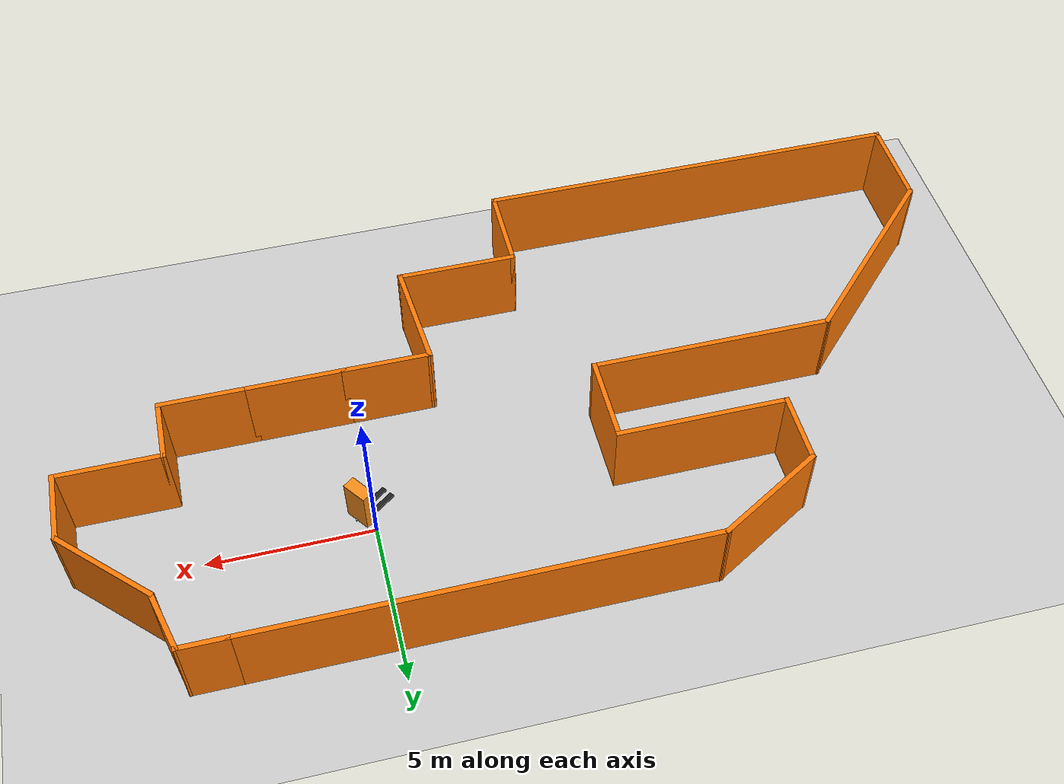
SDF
<sdf version="1.7">
 <world name="default">
  <light name="sun" type="directional">
   <pose>0 0 10 0 -0 0</pose>
   <diffuse>0.8 0.8 0.8 1</diffuse>
   <specular>0.2 0.2 0.2 1</specular>
   <attenuation>
    <range>1000</range>
    <constant>0.9</constant>
    <linear>0.01</linear>
    <quadratic>0.001</quadratic>
   </attenuation>
   <direction>-0.5 0.1 -0.9</direction>
   <spot><inner_angle>0</inner_angle><outer_angle>0</outer_angle><falloff>0</falloff></spot>
  </light>
  <model name="ground_plane">
   <static>1</static>
   <link name="link">
    <collision name="collision">
     <geometry><plane><normal>0 0 1</normal><size>100 100</size></plane></geometry>
     <surface>
      <contact><collide_bitmask>65535</collide_bitmask></contact>
      <friction><ode><mu>100</mu><mu2>50</mu2></ode></friction>
     </surface>
    </collision>
    <visual name="visual">
     <cast_shadows>0</cast_shadows>
     <geometry><plane><normal>0 0 1</normal><size>100 100</size></plane></geometry>
     <material>
      <script><uri>file://media/materials/scripts/gazebo.material</uri><name>Gazebo/Grey</name></script>
     </material>
    </visual>
   </link>
  </model>
  <gravity>0 0 -9.8</gravity>
  <magnetic_field>6e-06 2.3e-05 -4.2e-05</magnetic_field>
  <atmosphere type="adiabatic"/>
  <physics type="ode">
   <max_step_size>0.001</max_step_size>
   <real_time_factor>1</real_time_factor>
   <real_time_update_rate>1000</real_time_update_rate>
  </physics>
  <scene><ambient>0.4 0.4 0.4 1</ambient><background>0.7 0.7 0.7 1</background><shadows>1</shadows></scene>
  <audio><device>default</device></audio>
  <spherical_coordinates>
   <surface_model>EARTH_WGS84</surface_model>
   <latitude_deg>0</latitude_deg>
   <longitude_deg>0</longitude_deg>
   <elevation>0</elevation>
   <heading_deg>0</heading_deg>
  </spherical_coordinates>
  <model name="stacker">
   <link name="base_link">
    <inertial>
     <pose>-0.15 -0.000119 0.545385 0 -0 0</pose>
     <mass>260</mass>
     <inertia>
      <ixx>65.5208</ixx>
      <ixy>-0.157227</ixy>
      <ixz>-20.0967</ixz>
      <iyy>79.6196</iyy>
      <iyz>-4.194</iyz>
      <izz>34.2687</izz>
     </inertia>
    </inertial>
    <collision name="base_link_fixed_joint_lump__chassis_collision">
     <pose>0 0 0.7 0 0 -1.57</pose>
     <geometry><box><size>0.8 0.4 1.4</size></box></geometry>
    </collision>
    <collision name="base_link_fixed_joint_lump__laser_link_collision_1">
     <pose>0.225 0.000179 0.05 0 -0 0</pose>
     <geometry><box><size>0.05 0.05 0.05</size></box></geometry>
    </collision>
    <collision name="base_link_fixed_joint_lump__left_fork_collision_2">
     <pose>-0.650124 0.15594 0.03 0 0 -1.57</pose>
     <geometry><box><size>0.16 0.9 0.06</size></box></geometry>
    </collision>
    <collision name="base_link_fixed_joint_lump__right_fork_collision_3">
     <pose>-0.649875 -0.156976 0.03 0 0 -1.57</pose>
     <geometry><box><size>0.16 0.9 0.06</size></box></geometry>
    </collision>
    <visual name="base_link_fixed_joint_lump__chassis_visual">
     <pose>0 0 0.7 0 0 -1.57</pose>
     <geometry><box><size>0.8 0.4 1.4</size></box></geometry>
     <material>
      <script><name>Gazebo/Orange</name><uri>file://media/materials/scripts/gazebo.material</uri></script>
     </material>
    </visual>
    <visual name="base_link_fixed_joint_lump__laser_link_visual_1">
     <pose>0.225 0.000179 0.05 0 -0 0</pose>
     <geometry><box><size>0.05 0.05 0.05</size></box></geometry>
    </visual>
    <visual name="base_link_fixed_joint_lump__left_fork_visual_2">
     <pose>-0.650124 0.15594 0.03 0 0 -1.57</pose>
     <geometry><box><size>0.16 0.9 0.06</size></box></geometry>
     <material>
      <script><name>Gazebo/Black</name><uri>file://media/materials/scripts/gazebo.material</uri></script>
     </material>
    </visual>
    <visual name="base_link_fixed_joint_lump__right_fork_visual_3">
     <pose>-0.649875 -0.156976 0.03 0 0 -1.57</pose>
     <geometry><box><size>0.16 0.9 0.06</size></box></geometry>
     <material>
      <script><name>Gazebo/Black</name><uri>file://media/materials/scripts/gazebo.material</uri></script>
     </material>
    </visual>
    <sensor name="laser_scanner" type="ray">
     <always_on>1</always_on>
     <visualize>1</visualize>
     <update_rate>3</update_rate>
     <ray>
      <scan>
       <horizontal>
        <samples>360</samples>
        <resolution>1</resolution>
        <min_angle>-1.57</min_angle>
        <max_angle>1.57</max_angle>
       </horizontal>
       <vertical><samples>1</samples><min_angle>0</min_angle><max_angle>0</max_angle></vertical>
      </scan>
      <range><min>0.3</min><max>25</max><resolution>0.1</resolution></range>
     </ray>
     <plugin name="scan" filename="libgazebo_ros_ray_sensor.so">
      <ros><remapping>~/out:=scan</remapping></ros>
      <output_type>sensor_msgs/LaserScan</output_type>
      <frame_name>laser_link</frame_name>
     </plugin>
     <pose>0.225 0.000179 0.05 0 -0 0</pose>
    </sensor>
   </link>
   <joint name="fork_wheel_l_joint" type="revolute">
    <pose relative_to="base_link">-0.870124 0.155765 0.0075 -1.57 0 -3.14</pose>
    <parent>base_link</parent>
    <child>fox_wheel_L</child>
    <axis>
     <xyz>0 0 -1</xyz>
     <limit><lower>-1e+16</lower><upper>1e+16</upper></limit>
     <dynamics><spring_reference>0</spring_reference><spring_stiffness>0</spring_stiffness></dynamics>
    </axis>
   </joint>
   <link name="fox_wheel_L">
    <pose relative_to="fork_wheel_l_joint">0 0 0 0 -0 0</pose>
    <inertial>
     <mass>1</mass>
     <inertia>
      <ixx>0.000689583</ixx>
      <ixy>0</ixy>
      <ixz>0</ixz>
      <iyy>0.000689583</iyy>
      <iyz>0</iyz>
      <izz>0.0003125</izz>
     </inertia>
    </inertial>
    <collision name="fox_wheel_L_collision">
     <geometry><cylinder><length>0.08</length><radius>0.025</radius></cylinder></geometry>
     <surface><friction><ode><mu>1500</mu><mu2>1500</mu2></ode></friction></surface>
    </collision>
    <visual name="fox_wheel_L_visual">
     <geometry><cylinder><length>0.08</length><radius>0.025</radius></cylinder></geometry>
     <material>
      <script><name>Gazebo/Grey</name><uri>file://media/materials/scripts/gazebo.material</uri></script>
     </material>
    </visual>
   </link>
   <joint name="fork_wheel_r_joint" type="revolute">
    <pose relative_to="base_link">-0.869875 -0.157151 0.0075 -1.57 0 -3.14</pose>
    <parent>base_link</parent>
    <child>fox_wheel_R</child>
    <axis>
     <xyz>0 0 -1</xyz>
     <limit><lower>-1e+16</lower><upper>1e+16</upper></limit>
     <dynamics><spring_reference>0</spring_reference><spring_stiffness>0</spring_stiffness></dynamics>
    </axis>
   </joint>
   <link name="fox_wheel_R">
    <pose relative_to="fork_wheel_r_joint">0 0 0 0 -0 0</pose>
    <inertial>
     <mass>1</mass>
     <inertia>
      <ixx>0.000689583</ixx>
      <ixy>0</ixy>
      <ixz>0</ixz>
      <iyy>0.000689583</iyy>
      <iyz>0</iyz>
      <izz>0.0003125</izz>
     </inertia>
    </inertial>
    <collision name="fox_wheel_R_collision">
     <geometry><cylinder><length>0.08</length><radius>0.025</radius></cylinder></geometry>
     <surface><friction><ode><mu>1500</mu><mu2>1500</mu2></ode></friction></surface>
    </collision>
    <visual name="fox_wheel_R_visual">
     <geometry><cylinder><length>0.08</length><radius>0.025</radius></cylinder></geometry>
     <material>
      <script><name>Gazebo/Grey</name><uri>file://media/materials/scripts/gazebo.material</uri></script>
     </material>
    </visual>
   </link>
   <joint name="steering_joint" type="revolute">
    <pose relative_to="base_link">0 0 0.09 0 0 -1.57</pose>
    <parent>base_link</parent>
    <child>steering_joint_1</child>
    <axis>
     <xyz>0 0 1</xyz>
     <limit><lower>-1.57</lower><upper>1.57</upper><effort>10</effort><velocity>1</velocity></limit>
     <dynamics>
      <damping>10</damping>
      <friction>0</friction>
      <spring_reference>0</spring_reference>
      <spring_stiffness>0</spring_stiffness>
     </dynamics>
    </axis>
   </joint>
   <link name="steering_joint_1">
    <pose relative_to="steering_joint">0 0 0 0 -0 0</pose>
    <inertial>
     <mass>0.005</mass>
     <inertia><ixx>0.1</ixx><ixy>0</ixy><ixz>0</ixz><iyy>0.1</iyy><iyz>0</iyz><izz>0.1</izz></inertia>
    </inertial>
    <visual name="steering_joint_1_visual"><geometry><box><size>0.01 0.01 0.01</size></box></geometry></visual>
   </link>
   <joint name="traction_joint" type="revolute">
    <pose relative_to="steering_joint_1">0 0 0 -1.57 -0 -1.57</pose>
    <parent>steering_joint_1</parent>
    <child>wheel_1</child>
    <axis>
     <xyz>0 0 -1</xyz>
     <limit><effort>50</effort><velocity>0.5</velocity><lower>-1e+16</lower><upper>1e+16</upper></limit>
     <dynamics>
      <damping>2</damping>
      <friction>1</friction>
      <spring_reference>0</spring_reference>
      <spring_stiffness>0</spring_stiffness>
     </dynamics>
    </axis>
   </joint>
   <link name="wheel_1">
    <pose relative_to="traction_joint">0 0 0 0 -0 0</pose>
    <inertial>
     <mass>30</mass>
     <inertia>
      <ixx>0.199187</ixx>
      <ixy>0</ixy>
      <ixz>0</ixz>
      <iyy>0.199187</iyy>
      <iyz>0</iyz>
      <izz>0.198375</izz>
     </inertia>
    </inertial>
    <collision name="wheel_1_collision">
     <geometry><cylinder><length>0.2</length><radius>0.115</radius></cylinder></geometry>
     <surface><friction><ode><mu>1500</mu><mu2>1500</mu2></ode></friction></surface>
    </collision>
    <visual name="wheel_1_visual">
     <geometry><cylinder><length>0.2</length><radius>0.115</radius></cylinder></geometry>
     <material>
      <script><name>Gazebo/Grey</name><uri>file://media/materials/scripts/gazebo.material</uri></script>
     </material>
    </visual>
   </link>
   <static>0</static>
   <plugin name="gazebo_ros2_control" filename="libgazebo_ros2_control.so">
    <parameters>/home/humble/ros_control_ws/install/stacker_description/share/stacker_description/config/stacker_drive_controller.yaml</parameters>
   </plugin>
   <pose>0.312665 -0.582398 0.013522 7.2e-05 0.004569 0.627759</pose>
  </model>
  <model name="myworld">
   <pose>-5.31261 -3.02896 0 0 -0 0</pose>
   <link name="Wall_0">
    <collision name="Wall_0_Collision">
     <geometry><box><size>2.75 0.15 2.5</size></box></geometry>
     <pose>0 0 1.25 0 -0 0</pose>
    </collision>
    <visual name="Wall_0_Visual">
     <pose>0 0 1.25 0 -0 0</pose>
     <geometry><box><size>2.75 0.15 2.5</size></box></geometry>
     <material>
      <script><uri>file://media/materials/scripts/gazebo.material</uri><name>Gazebo/Grey</name></script>
      <ambient>0.996078 0.47451 0.0196078 1</ambient>
     </material>
     <meta><layer>0</layer></meta>
    </visual>
    <pose>4.06611 -1.11104 0 0 -0 0</pose>
   </link>
   <link name="Wall_1">
    <collision name="Wall_1_Collision">
     <geometry><box><size>3 0.15 2.5</size></box></geometry>
     <pose>0 0 1.25 0 -0 0</pose>
    </collision>
    <visual name="Wall_1_Visual">
     <pose>0 0 1.25 0 -0 0</pose>
     <geometry><box><size>3 0.15 2.5</size></box></geometry>
     <material>
      <script><uri>file://media/materials/scripts/gazebo.material</uri><name>Gazebo/Grey</name></script>
      <ambient>0.996078 0.47451 0.0196078 1</ambient>
     </material>
     <meta><layer>0</layer></meta>
    </visual>
    <pose>6.79111 -1.11104 0 0 -0 0</pose>
   </link>
   <link name="Wall_10">
    <collision name="Wall_10_Collision">
     <geometry><box><size>3.75 0.15 2.5</size></box></geometry>
     <pose>0 0 1.25 0 -0 0</pose>
    </collision>
    <visual name="Wall_10_Visual">
     <pose>0 0 1.25 0 -0 0</pose>
     <geometry><box><size>3.75 0.15 2.5</size></box></geometry>
     <material>
      <script><uri>file://media/materials/scripts/gazebo.material</uri><name>Gazebo/Grey</name></script>
      <ambient>0.996078 0.47451 0.0196078 1</ambient>
     </material>
     <meta><layer>0</layer></meta>
    </visual>
    <pose>-5.44036 6.09473 0 0 -0 -2.61799</pose>
   </link>
   <link name="Wall_11">
    <collision name="Wall_11_Collision">
     <geometry><box><size>2.25 0.15 2.5</size></box></geometry>
     <pose>0 0 1.25 0 -0 0</pose>
    </collision>
    <visual name="Wall_11_Visual">
     <pose>0 0 1.25 0 -0 0</pose>
     <geometry><box><size>2.25 0.15 2.5</size></box></geometry>
     <material>
      <script><uri>file://media/materials/scripts/gazebo.material</uri><name>Gazebo/Grey</name></script>
      <ambient>0.996078 0.47451 0.0196078 1</ambient>
     </material>
     <meta><layer>0</layer></meta>
    </visual>
    <pose>-6.9992 4.14473 0 0 -0 -1.5708</pose>
   </link>
   <link name="Wall_12">
    <collision name="Wall_12_Collision">
     <geometry><box><size>5.25 0.15 2.5</size></box></geometry>
     <pose>0 0 1.25 0 -0 0</pose>
    </collision>
    <visual name="Wall_12_Visual">
     <pose>0 0 1.25 0 -0 0</pose>
     <geometry><box><size>5.25 0.15 2.5</size></box></geometry>
     <material>
      <script><uri>file://media/materials/scripts/gazebo.material</uri><name>Gazebo/Grey</name></script>
      <ambient>0.996078 0.47451 0.0196078 1</ambient>
     </material>
     <meta><layer>0</layer></meta>
    </visual>
    <pose>-4.4492 3.09473 0 0 -0 0</pose>
   </link>
   <link name="Wall_13">
    <collision name="Wall_13_Collision">
     <geometry><box><size>2.75 0.15 2.5</size></box></geometry>
     <pose>0 0 1.25 0 -0 0</pose>
    </collision>
    <visual name="Wall_13_Visual">
     <pose>0 0 1.25 0 -0 0</pose>
     <geometry><box><size>2.75 0.15 2.5</size></box></geometry>
     <material>
      <script><uri>file://media/materials/scripts/gazebo.material</uri><name>Gazebo/Grey</name></script>
      <ambient>0.996078 0.47451 0.0196078 1</ambient>
     </material>
     <meta><layer>0</layer></meta>
    </visual>
    <pose>-1.8992 1.79473 0 0 -0 -1.5708</pose>
   </link>
   <link name="Wall_14">
    <collision name="Wall_14_Collision">
     <geometry><box><size>7.5 0.15 2.5</size></box></geometry>
     <pose>0 0 1.25 0 -0 0</pose>
    </collision>
    <visual name="Wall_14_Visual">
     <pose>0 0 1.25 0 -0 0</pose>
     <geometry><box><size>7.5 0.15 2.5</size></box></geometry>
     <material>
      <script><uri>file://media/materials/scripts/gazebo.material</uri><name>Gazebo/Grey</name></script>
      <ambient>0.996078 0.47451 0.0196078 1</ambient>
     </material>
     <meta><layer>0</layer></meta>
    </visual>
    <pose>-5.5742 0.494726 0 0 -0 3.14159</pose>
   </link>
   <link name="Wall_16">
    <collision name="Wall_16_Collision">
     <geometry><box><size>6.75 0.15 2.5</size></box></geometry>
     <pose>0 0 1.25 0 -0 0</pose>
    </collision>
    <visual name="Wall_16_Visual">
     <pose>0 0 1.25 0 -0 0</pose>
     <geometry><box><size>6.75 0.15 2.5</size></box></geometry>
     <material>
      <script><uri>file://media/materials/scripts/gazebo.material</uri><name>Gazebo/Grey</name></script>
      <ambient>0.996078 0.47451 0.0196078 1</ambient>
     </material>
     <meta><layer>0</layer></meta>
    </visual>
    <pose>-11.5827 -1.83873 0 0 -0 -2.35619</pose>
   </link>
   <link name="Wall_17">
    <collision name="Wall_17_Collision">
     <geometry><box><size>3 0.15 2.5</size></box></geometry>
     <pose>0 0 1.25 0 -0 0</pose>
    </collision>
    <visual name="Wall_17_Visual">
     <pose>0 0 1.25 0 -0 0</pose>
     <geometry><box><size>3 0.15 2.5</size></box></geometry>
     <material>
      <script><uri>file://media/materials/scripts/gazebo.material</uri><name>Gazebo/Grey</name></script>
      <ambient>0.996078 0.47451 0.0196078 1</ambient>
     </material>
     <meta><layer>0</layer></meta>
    </visual>
    <pose>-13.9161 -5.59718 0 0 -0 -1.5708</pose>
   </link>
   <link name="Wall_18">
    <collision name="Wall_18_Collision">
     <geometry><box><size>13.5 0.15 2.5</size></box></geometry>
     <pose>0 0 1.25 0 -0 0</pose>
    </collision>
    <visual name="Wall_18_Visual">
     <pose>0 0 1.25 0 -0 0</pose>
     <geometry><box><size>13.5 0.15 2.5</size></box></geometry>
     <material>
      <script><uri>file://media/materials/scripts/gazebo.material</uri><name>Gazebo/Grey</name></script>
      <ambient>0.996078 0.47451 0.0196078 1</ambient>
     </material>
     <meta><layer>0</layer></meta>
    </visual>
    <pose>-7.24111 -7.02218 0 0 -0 0</pose>
   </link>
   <link name="Wall_19">
    <collision name="Wall_19_Collision">
     <geometry><box><size>2.75 0.15 2.5</size></box></geometry>
     <pose>0 0 1.25 0 -0 0</pose>
    </collision>
    <visual name="Wall_19_Visual">
     <pose>0 0 1.25 0 -0 0</pose>
     <geometry><box><size>2.75 0.15 2.5</size></box></geometry>
     <material>
      <script><uri>file://media/materials/scripts/gazebo.material</uri><name>Gazebo/Grey</name></script>
      <ambient>0.996078 0.47451 0.0196078 1</ambient>
     </material>
     <meta><layer>0</layer></meta>
    </visual>
    <pose>-0.566109 -5.72218 0 0 -0 1.5708</pose>
   </link>
   <link name="Wall_2">
    <collision name="Wall_2_Collision">
     <geometry><box><size>2.75 0.15 2.5</size></box></geometry>
     <pose>0 0 1.25 0 -0 0</pose>
    </collision>
    <visual name="Wall_2_Visual">
     <pose>0 0 1.25 0 -0 0</pose>
     <geometry><box><size>2.75 0.15 2.5</size></box></geometry>
     <material>
      <script><uri>file://media/materials/scripts/gazebo.material</uri><name>Gazebo/Grey</name></script>
      <ambient>0.996078 0.47451 0.0196078 1</ambient>
     </material>
     <meta><layer>0</layer></meta>
    </visual>
    <pose>9.51611 -1.11104 0 0 -0 0</pose>
   </link>
   <link name="Wall_20">
    <collision name="Wall_20_Collision">
     <geometry><box><size>3.75 0.15 2.5</size></box></geometry>
     <pose>0 0 1.25 0 -0 0</pose>
    </collision>
    <visual name="Wall_20_Visual">
     <pose>0 0 1.25 0 -0 0</pose>
     <geometry><box><size>3.75 0.15 2.5</size></box></geometry>
     <material>
      <script><uri>file://media/materials/scripts/gazebo.material</uri><name>Gazebo/Grey</name></script>
      <ambient>0.996078 0.47451 0.0196078 1</ambient>
     </material>
     <meta><layer>0</layer></meta>
    </visual>
    <pose>1.23389 -4.42218 0 0 -0 0</pose>
   </link>
   <link name="Wall_21">
    <collision name="Wall_21_Collision">
     <geometry><box><size>3.47194 0.15 2.5</size></box></geometry>
     <pose>0 0 1.25 0 -0 0</pose>
    </collision>
    <visual name="Wall_21_Visual">
     <pose>0 0 1.25 0 -0 0</pose>
     <geometry><box><size>3.47194 0.15 2.5</size></box></geometry>
     <material>
      <script><uri>file://media/materials/scripts/gazebo.material</uri><name>Gazebo/Grey</name></script>
      <ambient>0.996078 0.47451 0.0196078 1</ambient>
     </material>
     <meta><layer>0</layer></meta>
    </visual>
    <pose>2.9 -2.76661 0 0 -0 1.65149</pose>
   </link>
   <link name="Wall_3">
    <collision name="Wall_3_Collision">
     <geometry><box><size>2 0.15 2.5</size></box></geometry>
     <pose>0 0 1.25 0 -0 0</pose>
    </collision>
    <visual name="Wall_3_Visual">
     <pose>0 0 1.25 0 -0 0</pose>
     <geometry><box><size>2 0.15 2.5</size></box></geometry>
     <material>
      <script><uri>file://media/materials/scripts/gazebo.material</uri><name>Gazebo/Grey</name></script>
      <ambient>0.996078 0.47451 0.0196078 1</ambient>
     </material>
     <meta><layer>0</layer></meta>
    </visual>
    <pose>10.8161 -0.186044 0 0 -0 1.5708</pose>
   </link>
   <link name="Wall_4">
    <collision name="Wall_4_Collision">
     <geometry><box><size>3.25 0.15 2.5</size></box></geometry>
     <pose>0 0 1.25 0 -0 0</pose>
    </collision>
    <visual name="Wall_4_Visual">
     <pose>0 0 1.25 0 -0 0</pose>
     <geometry><box><size>3.25 0.15 2.5</size></box></geometry>
     <material>
      <script><uri>file://media/materials/scripts/gazebo.material</uri><name>Gazebo/Grey</name></script>
      <ambient>0.996078 0.47451 0.0196078 1</ambient>
     </material>
     <meta><layer>0</layer></meta>
    </visual>
    <pose>12.3661 0.738956 0 0 -0 0</pose>
   </link>
   <link name="Wall_5">
    <collision name="Wall_5_Collision">
     <geometry><box><size>2.25 0.15 2.5</size></box></geometry>
     <pose>0 0 1.25 0 -0 0</pose>
    </collision>
    <visual name="Wall_5_Visual">
     <pose>0 0 1.25 0 -0 0</pose>
     <geometry><box><size>2.25 0.15 2.5</size></box></geometry>
     <material>
      <script><uri>file://media/materials/scripts/gazebo.material</uri><name>Gazebo/Grey</name></script>
      <ambient>0.996078 0.47451 0.0196078 1</ambient>
     </material>
     <meta><layer>0</layer></meta>
    </visual>
    <pose>13.9161 1.78896 0 0 -0 1.5708</pose>
   </link>
   <link name="Wall_6">
    <collision name="Wall_6_Collision">
     <geometry><box><size>3.5 0.15 2.5</size></box></geometry>
     <pose>0 0 1.25 0 -0 0</pose>
    </collision>
    <visual name="Wall_6_Visual">
     <pose>0 0 1.25 0 -0 0</pose>
     <geometry><box><size>3.5 0.15 2.5</size></box></geometry>
     <material>
      <script><uri>file://media/materials/scripts/gazebo.material</uri><name>Gazebo/Grey</name></script>
      <ambient>0.996078 0.47451 0.0196078 1</ambient>
     </material>
     <meta><layer>0</layer></meta>
    </visual>
    <pose>12.7317 4.02336 0 0 -0 2.35619</pose>
   </link>
   <link name="Wall_7">
    <collision name="Wall_7_Collision">
     <geometry><box><size>2 0.15 2.5</size></box></geometry>
     <pose>0 0 1.25 0 -0 0</pose>
    </collision>
    <visual name="Wall_7_Visual">
     <pose>0 0 1.25 0 -0 0</pose>
     <geometry><box><size>2 0.15 2.5</size></box></geometry>
     <material>
      <script><uri>file://media/materials/scripts/gazebo.material</uri><name>Gazebo/Grey</name></script>
      <ambient>0.996078 0.47451 0.0196078 1</ambient>
     </material>
     <meta><layer>0</layer></meta>
    </visual>
    <pose>11.3079 6.10124 0 0 -0 1.8326</pose>
   </link>
   <link name="Wall_8">
    <collision name="Wall_8_Collision">
     <geometry><box><size>1.5 0.15 2.5</size></box></geometry>
     <pose>0 0 1.25 0 -0 0</pose>
    </collision>
    <visual name="Wall_8_Visual">
     <pose>0 0 1.25 0 -0 0</pose>
     <geometry><box><size>1.5 0.15 2.5</size></box></geometry>
     <material>
      <script><uri>file://media/materials/scripts/gazebo.material</uri><name>Gazebo/Grey</name></script>
      <ambient>0.996078 0.47451 0.0196078 1</ambient>
     </material>
     <meta><layer>0</layer></meta>
    </visual>
    <pose>10.3935 6.99473 0 0 -0 3.14159</pose>
   </link>
   <link name="Wall_9">
    <collision name="Wall_9_Collision">
     <geometry><box><size>13.75 0.15 2.5</size></box></geometry>
     <pose>0 0 1.25 0 -0 0</pose>
    </collision>
    <visual name="Wall_9_Visual">
     <pose>0 0 1.25 0 -0 0</pose>
     <geometry><box><size>13.75 0.15 2.5</size></box></geometry>
     <material>
      <script><uri>file://media/materials/scripts/gazebo.material</uri><name>Gazebo/Grey</name></script>
      <ambient>0.996078 0.47451 0.0196078 1</ambient>
     </material>
     <meta><layer>0</layer></meta>
    </visual>
    <pose>2.91849 6.99473 0 0 -0 3.14159</pose>
   </link>
   <static>1</static>
  </model>
 </world>
</sdf>
